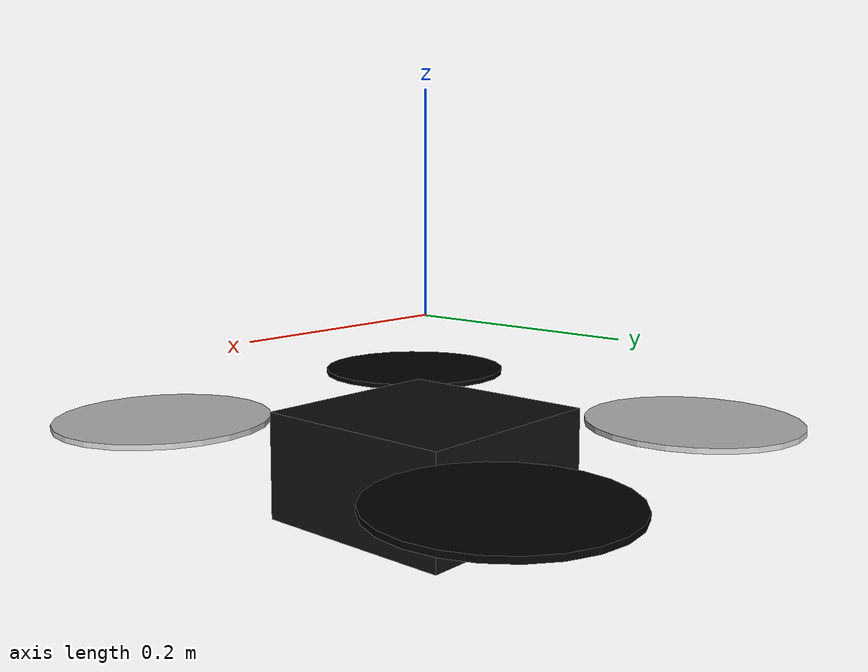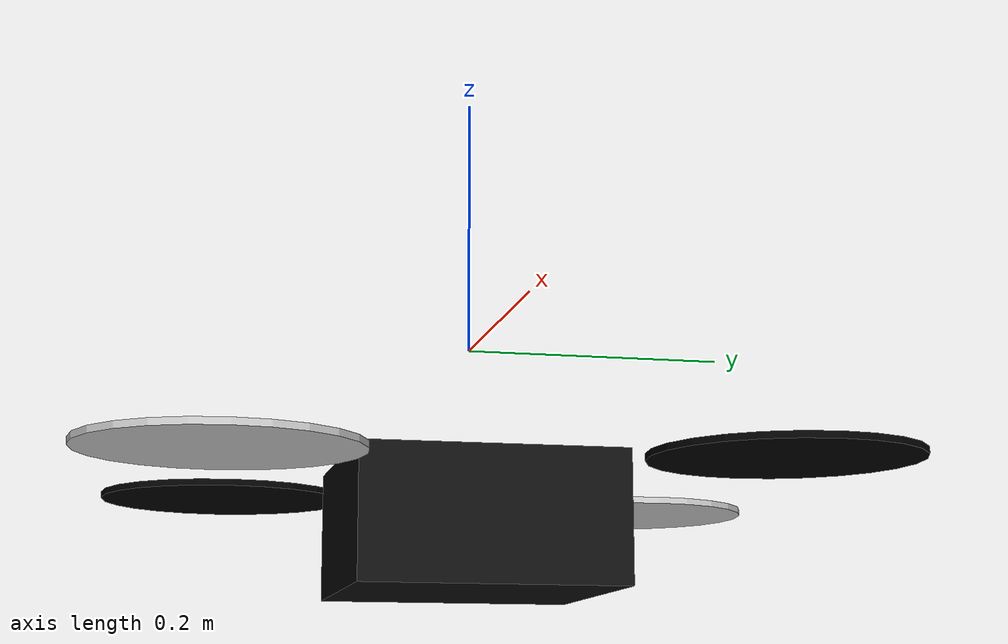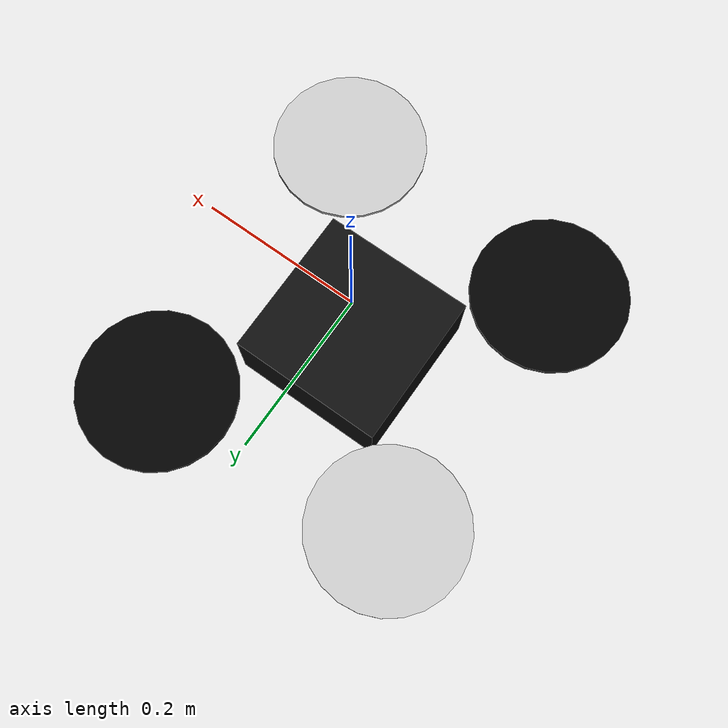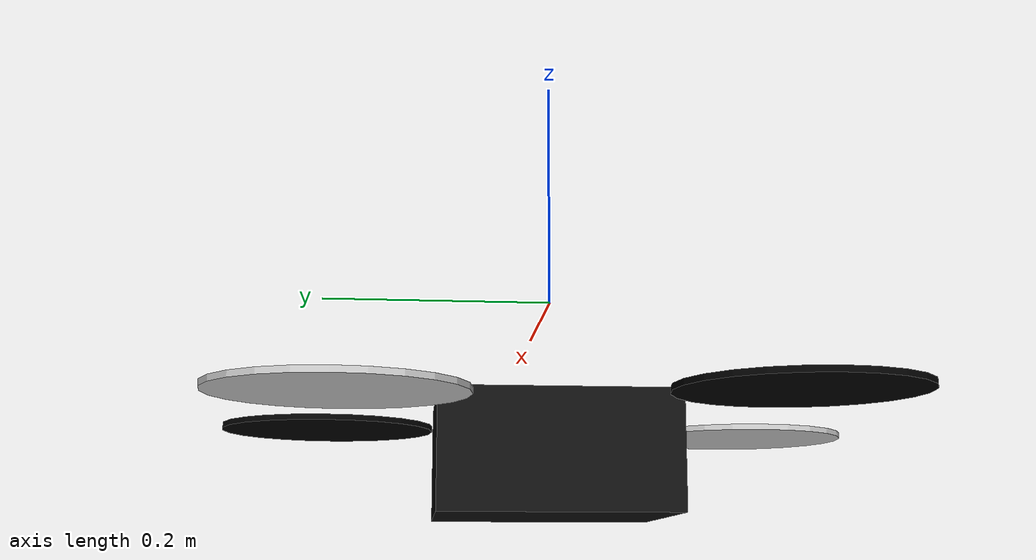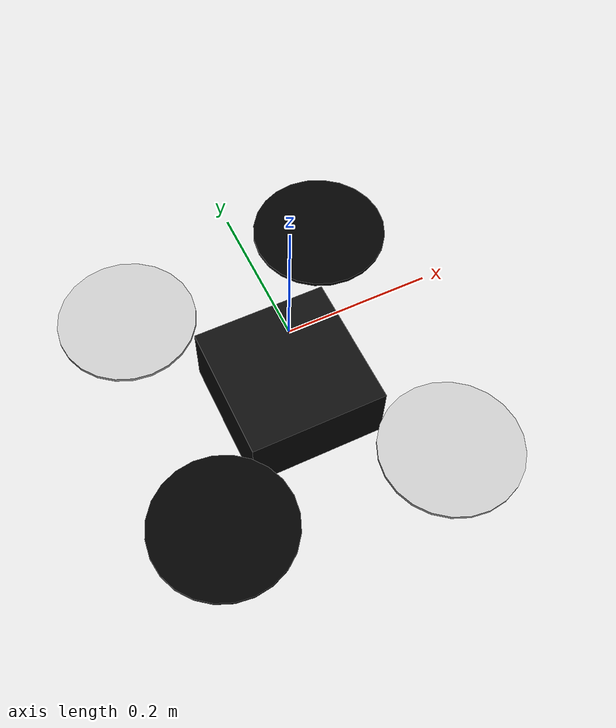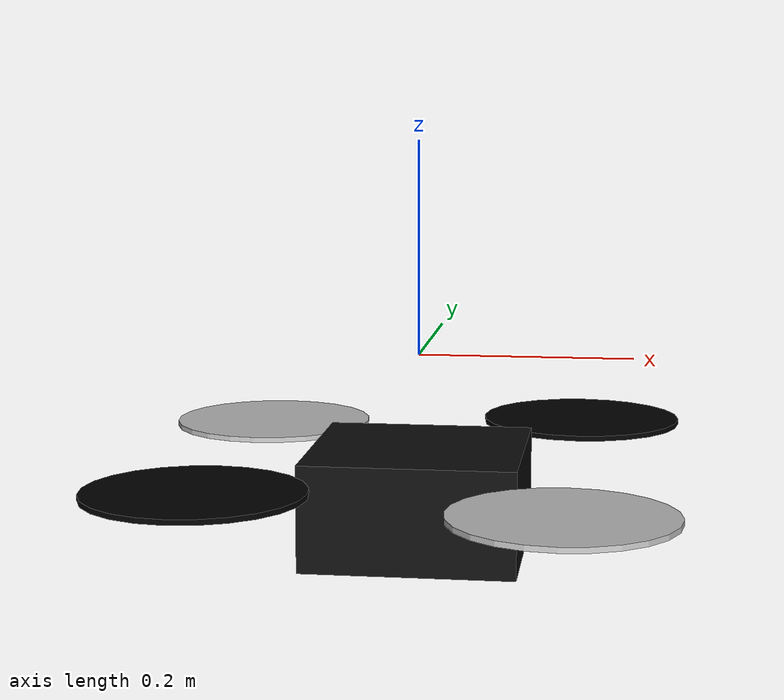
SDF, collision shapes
<?xml version="1.0" ?>
<!-- |    This document was autogenerated by xacro from model.xacro.sdf                | -->
<!-- |    EDITING THIS FILE BY HAND IS NOT RECOMMENDED                                 | -->
<sdf version="1.9">
  <model name="spiri_mu">
    <include>
      <uri>model://robots/spiri_mu_no_gimbal/models/spiri_mu_base</uri>
    </include>
    <!-- UAV plugins -->
    <plugin filename="gz-sim-joint-state-publisher-system" name="gz::sim::systems::JointStatePublisher">
    </plugin>
    <plugin filename="gz-sim-lift-drag-system" name="gz::sim::systems::LiftDrag">
      <a0>0.3</a0>
      <alpha_stall>1.4</alpha_stall>
      <cla>4.2500</cla>
      <cda>0.10</cda>
      <cma>0.0</cma>
      <cla_stall>-0.025</cla_stall>
      <cda_stall>0.0</cda_stall>
      <cma_stall>0.0</cma_stall>
      <area>0.002</area>
      <air_density>1.2041</air_density>
      <cp>0.084 0 0</cp>
      <forward>0 1 0</forward>
      <upward>0 0 1</upward>
      <link_name>spiri_mu_base::rotor_0</link_name>
    </plugin>
    <plugin filename="gz-sim-lift-drag-system" name="gz::sim::systems::LiftDrag">
      <a0>0.3</a0>
      <alpha_stall>1.4</alpha_stall>
      <cla>4.2500</cla>
      <cda>0.10</cda>
      <cma>0.0</cma>
      <cla_stall>-0.025</cla_stall>
      <cda_stall>0.0</cda_stall>
      <cma_stall>0.0</cma_stall>
      <area>0.002</area>
      <air_density>1.2041</air_density>
      <cp>-0.084 0 0</cp>
      <forward>0 -1 0</forward>
      <upward>0 0 1</upward>
      <link_name>spiri_mu_base::rotor_0</link_name>
    </plugin>
    <plugin filename="gz-sim-lift-drag-system" name="gz::sim::systems::LiftDrag">
      <a0>0.3</a0>
      <alpha_stall>1.4</alpha_stall>
      <cla>4.2500</cla>
      <cda>0.10</cda>
      <cma>0.0</cma>
      <cla_stall>-0.025</cla_stall>
      <cda_stall>0.0</cda_stall>
      <cma_stall>0.0</cma_stall>
      <area>0.002</area>
      <air_density>1.2041</air_density>
      <cp>0.084 0 0</cp>
      <forward>0 1 0</forward>
      <upward>0 0 1</upward>
      <link_name>spiri_mu_base::rotor_1</link_name>
    </plugin>
    <plugin filename="gz-sim-lift-drag-system" name="gz::sim::systems::LiftDrag">
      <a0>0.3</a0>
      <alpha_stall>1.4</alpha_stall>
      <cla>4.2500</cla>
      <cda>0.10</cda>
      <cma>0.0</cma>
      <cla_stall>-0.025</cla_stall>
      <cda_stall>0.0</cda_stall>
      <cma_stall>0.0</cma_stall>
      <area>0.002</area>
      <air_density>1.2041</air_density>
      <cp>-0.084 0 0</cp>
      <forward>0 -1 0</forward>
      <upward>0 0 1</upward>
      <link_name>spiri_mu_base::rotor_1</link_name>
    </plugin>
    <plugin filename="gz-sim-lift-drag-system" name="gz::sim::systems::LiftDrag">
      <a0>0.3</a0>
      <alpha_stall>1.4</alpha_stall>
      <cla>4.2500</cla>
      <cda>0.10</cda>
      <cma>0.0</cma>
      <cla_stall>-0.025</cla_stall>
      <cda_stall>0.0</cda_stall>
      <cma_stall>0.0</cma_stall>
      <area>0.002</area>
      <air_density>1.2041</air_density>
      <cp>0.084 0 0</cp>
      <forward>0 -1 0</forward>
      <upward>0 0 1</upward>
      <link_name>spiri_mu_base::rotor_2</link_name>
    </plugin>
    <plugin filename="gz-sim-lift-drag-system" name="gz::sim::systems::LiftDrag">
      <a0>0.3</a0>
      <alpha_stall>1.4</alpha_stall>
      <cla>4.2500</cla>
      <cda>0.10</cda>
      <cma>0.0</cma>
      <cla_stall>-0.025</cla_stall>
      <cda_stall>0.0</cda_stall>
      <cma_stall>0.0</cma_stall>
      <area>0.002</area>
      <air_density>1.2041</air_density>
      <cp>-0.084 0 0</cp>
      <forward>0 1 0</forward>
      <upward>0 0 1</upward>
      <link_name>spiri_mu_base::rotor_2</link_name>
    </plugin>
    <plugin filename="gz-sim-lift-drag-system" name="gz::sim::systems::LiftDrag">
      <a0>0.3</a0>
      <alpha_stall>1.4</alpha_stall>
      <cla>4.2500</cla>
      <cda>0.10</cda>
      <cma>0.0</cma>
      <cla_stall>-0.025</cla_stall>
      <cda_stall>0.0</cda_stall>
      <cma_stall>0.0</cma_stall>
      <area>0.002</area>
      <air_density>1.2041</air_density>
      <cp>0.084 0 0</cp>
      <forward>0 -1 0</forward>
      <upward>0 0 1</upward>
      <link_name>spiri_mu_base::rotor_3</link_name>
    </plugin>
    <plugin filename="gz-sim-lift-drag-system" name="gz::sim::systems::LiftDrag">
      <a0>0.3</a0>
      <alpha_stall>1.4</alpha_stall>
      <cla>4.2500</cla>
      <cda>0.10</cda>
      <cma>0.0</cma>
      <cla_stall>-0.025</cla_stall>
      <cda_stall>0.0</cda_stall>
      <cma_stall>0.0</cma_stall>
      <area>0.002</area>
      <air_density>1.2041</air_density>
      <cp>-0.084 0 0</cp>
      <forward>0 1 0</forward>
      <upward>0 0 1</upward>
      <link_name>spiri_mu_base::rotor_3</link_name>
    </plugin>
    <plugin filename="gz-sim-apply-joint-force-system" name="gz::sim::systems::ApplyJointForce">
      <joint_name>spiri_mu_base::rotor_0_joint</joint_name>
    </plugin>
    <plugin filename="gz-sim-apply-joint-force-system" name="gz::sim::systems::ApplyJointForce">
      <joint_name>spiri_mu_base::rotor_1_joint</joint_name>
    </plugin>
    <plugin filename="gz-sim-apply-joint-force-system" name="gz::sim::systems::ApplyJointForce">
      <joint_name>spiri_mu_base::rotor_2_joint</joint_name>
    </plugin>
    <plugin filename="gz-sim-apply-joint-force-system" name="gz::sim::systems::ApplyJointForce">
      <joint_name>spiri_mu_base::rotor_3_joint</joint_name>
    </plugin>
    <plugin filename="ArduPilotPlugin" name="ArduPilotPlugin">
      <!-- Port settings -->
      <fdm_addr>0.0.0.0</fdm_addr>
      <fdm_port_in>9012</fdm_port_in>
      <connectionTimeoutMaxCount>5</connectionTimeoutMaxCount>
      <lock_step>1</lock_step>
      <!-- Frame conventions
        Require by ArduPilot: change model and gazebo from XYZ to XY-Z coordinates
      -->
      <modelXYZToAirplaneXForwardZDown degrees="true">0 0 0 180 0 0</modelXYZToAirplaneXForwardZDown>
      <gazeboXYZToNED degrees="true">0 0 0 180 0 90</gazeboXYZToNED>
      <!-- Sensors -->
      <imuName>spiri_mu_base::imu_link::imu_sensor</imuName>
      <!--
          incoming control command [0, 1]
          so offset it by 0 to get [0, 1]
          and divide max target by 1.
          offset = 0
          multiplier = 838 max rpm / 1 = 838
        -->
      <control channel="0">
        <jointName>spiri_mu_base::rotor_0_joint</jointName>
        <useForce>1</useForce>
        <multiplier>838</multiplier>
        <offset>0</offset>
        <servo_min>1100</servo_min>
        <servo_max>1900</servo_max>
        <type>VELOCITY</type>
        <p_gain>0.20</p_gain>
        <i_gain>0</i_gain>
        <d_gain>0</d_gain>
        <i_max>0</i_max>
        <i_min>0</i_min>
        <cmd_max>2.5</cmd_max>
        <cmd_min>-2.5</cmd_min>
        <controlVelocitySlowdownSim>1</controlVelocitySlowdownSim>
      </control>
      <control channel="1">
        <jointName>spiri_mu_base::rotor_1_joint</jointName>
        <useForce>1</useForce>
        <multiplier>838</multiplier>
        <offset>0</offset>
        <servo_min>1100</servo_min>
        <servo_max>1900</servo_max>
        <type>VELOCITY</type>
        <p_gain>0.20</p_gain>
        <i_gain>0</i_gain>
        <d_gain>0</d_gain>
        <i_max>0</i_max>
        <i_min>0</i_min>
        <cmd_max>2.5</cmd_max>
        <cmd_min>-2.5</cmd_min>
        <controlVelocitySlowdownSim>1</controlVelocitySlowdownSim>
      </control>
      <control channel="2">
        <jointName>spiri_mu_base::rotor_2_joint</jointName>
        <useForce>1</useForce>
        <multiplier>-838</multiplier>
        <offset>0</offset>
        <servo_min>1100</servo_min>
        <servo_max>1900</servo_max>
        <type>VELOCITY</type>
        <p_gain>0.20</p_gain>
        <i_gain>0</i_gain>
        <d_gain>0</d_gain>
        <i_max>0</i_max>
        <i_min>0</i_min>
        <cmd_max>2.5</cmd_max>
        <cmd_min>-2.5</cmd_min>
        <controlVelocitySlowdownSim>1</controlVelocitySlowdownSim>
      </control>
      <control channel="3">
        <jointName>spiri_mu_base::rotor_3_joint</jointName>
        <useForce>1</useForce>
        <multiplier>-838</multiplier>
        <offset>0</offset>
        <servo_min>1100</servo_min>
        <servo_max>1900</servo_max>
        <type>VELOCITY</type>
        <p_gain>0.20</p_gain>
        <i_gain>0</i_gain>
        <d_gain>0</d_gain>
        <i_max>0</i_max>
        <i_min>0</i_min>
        <cmd_max>2.5</cmd_max>
        <cmd_min>-2.5</cmd_min>
        <controlVelocitySlowdownSim>1</controlVelocitySlowdownSim>
      </control>
    </plugin>
  </model>
</sdf>

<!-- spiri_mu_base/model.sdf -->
<sdf version='1.9'>
  <model name='spiri_mu_base'>
    <pose>0 0 0 0 0 0</pose>
    <link name='base_link'>
      <velocity_decay>
        <linear>0.0</linear>
        <angular>0.0</angular>
      </velocity_decay>
      <inertial>
        <pose>0 0 0 0 0 0</pose>
        <mass>1.5</mass>
        <inertia>
          <ixx>0.008</ixx>
          <ixy>0</ixy>
          <ixz>0</ixz>
          <iyy>0.015</iyy>
          <iyz>0</iyz>
          <izz>0.017</izz>
        </inertia>
      </inertial>
      <collision name='base_collision'>
        <pose degrees='true'>0 0 -0.1375 0 0 180</pose>
        <geometry>
          <box>
            <size>0.2 0.2 0.1</size>
          </box>
        </geometry>
        <surface>
          <contact>
            <ode>
              <max_vel>100.0</max_vel>
              <min_depth>0.001</min_depth>
            </ode>
          </contact>
          <friction>
            <ode>
              <mu>100000.0</mu>
              <mu2>100000.0</mu2>
            </ode>
          </friction>
        </surface>
      </collision>
      <visual name='base_visual'>
        <pose degrees='true'>0 0 -0.1375 0 0 90</pose>
        <geometry>
          <mesh>
            <uri>model://robots/spiri_mu/models/spiri_mu_base/meshes/mu2_frame.fbx</uri>
            <scale> 0.01 0.01 0.01</scale>
          </mesh>
        </geometry>
      </visual>

      <visual name='front_left_leg_visual'>
        <pose degrees='true'>0.1455 0.20 -0.1375 0 0 285</pose>
        <geometry>
          <mesh>
            <uri>model://robots/spiri_mu/models/spiri_mu_base/meshes/mu2_leg.fbx</uri>
            <scale> 0.01 0.01 0.01</scale>
          </mesh>
        </geometry>
         <material>
          <ambient>0.05 0.05 0.05</ambient>
          <diffuse>0.05 0.05 0.05</diffuse>
          <specular>0.01 0.01 0.01 1.0</specular>
          <pbr>
            <metal>
              <metalness>0.5</metalness>
              <roughness>0.5</roughness>
            </metal>
          </pbr>
        </material>
      </visual>

      <visual name='front_left_motor_visual'>
        <pose degrees='true'>0.1455 0.20 -0.13 0 0 30</pose>
        <geometry>
          <mesh>
            <uri>model://robots/spiri_mu/models/spiri_mu_base/meshes/mu2_motor.fbx</uri>
            <scale> 0.01 0.01 0.01</scale>
          </mesh>
        </geometry>
         <material>
          <ambient>0.05 0.05 0.05</ambient>
          <diffuse>0.05 0.05 0.05</diffuse>
          <specular>0.01 0.01 0.01 1.0</specular>
          <pbr>
            <metal>
              <metalness>0.5</metalness>
              <roughness>0.5</roughness>
            </metal>
          </pbr>
        </material>
      </visual>

      <visual name='front_right_leg_visual'>
        <pose degrees='true'>0.1455 -0.20 -0.1375 0 0 165</pose>
        <geometry>
          <mesh>
            <uri>model://robots/spiri_mu/models/spiri_mu_base/meshes/mu2_leg.fbx</uri>
            <scale> 0.01 0.01 0.01</scale>
          </mesh>
        </geometry>
         <material>
          <ambient>0.05 0.05 0.05</ambient>
          <diffuse>0.05 0.05 0.05</diffuse>
          <specular>0.01 0.01 0.01 1.0</specular>
          <pbr>
            <metal>
              <metalness>0.5</metalness>
              <roughness>0.5</roughness>
            </metal>
          </pbr>
        </material>
      </visual>

      <visual name='front_right_motor_visual'>
        <pose degrees='true'>0.1455 -0.20 -0.13 0 0 90</pose>
        <geometry>
          <mesh>
            <uri>model://robots/spiri_mu/models/spiri_mu_base/meshes/mu2_motor.fbx</uri>
            <scale> 0.01 0.01 0.01</scale>
          </mesh>
        </geometry>
        <material>
          <ambient>0.05 0.05 0.05</ambient>
          <diffuse>0.05 0.05 0.05</diffuse>
          <specular>0.01 0.01 0.01 1.0</specular>
          <pbr>
            <metal>
              <metalness>0.5</metalness>
              <roughness>0.5</roughness>
            </metal>
          </pbr>
        </material>
      </visual>

      <visual name='rear_left_leg_visual'>
        <pose degrees='true'>-0.175 0.175 -0.1375 0 0 0</pose>
        <geometry>
          <mesh>
            <uri>model://robots/spiri_mu/models/spiri_mu_base/meshes/mu2_leg.fbx</uri>
            <scale> 0.01 0.01 0.01</scale>
          </mesh>
        </geometry>
         <material>
          <ambient>0.05 0.05 0.05</ambient>
          <diffuse>0.05 0.05 0.05</diffuse>
          <specular>0.01 0.01 0.01 1.0</specular>
          <pbr>
            <metal>
              <metalness>0.5</metalness>
              <roughness>0.5</roughness>
            </metal>
          </pbr>
        </material>
      </visual>

      <visual name='rear_left_motor_visual'>
        <pose degrees='true'>-0.175 0.175 -0.13 0 0 0</pose>
        <geometry>
          <mesh>
            <uri>model://robots/spiri_mu/models/spiri_mu_base/meshes/mu2_motor.fbx</uri>
            <scale> 0.01 0.01 0.01</scale>
          </mesh>
        </geometry>
        <material>
          <ambient>0.05 0.05 0.05</ambient>
          <diffuse>0.05 0.05 0.05</diffuse>
          <specular>0.01 0.01 0.01 1.0</specular>
          <pbr>
            <metal>
              <metalness>0.5</metalness>
              <roughness>0.5</roughness>
            </metal>
          </pbr>
        </material>
      </visual>

      <visual name='rear_right_leg_visual'>
        <pose degrees='true'>-0.175 -0.175 -0.1375 0 0 90</pose>
        <geometry>
          <mesh>
            <uri>model://robots/spiri_mu/models/spiri_mu_base/meshes/mu2_leg.fbx</uri>
            <scale> 0.01 0.01 0.01</scale>
          </mesh>
        </geometry>
         <material>
          <ambient>0.05 0.05 0.05</ambient>
          <diffuse>0.05 0.05 0.05</diffuse>
          <specular>0.01 0.01 0.01 1.0</specular>
          <pbr>
            <metal>
              <metalness>0.5</metalness>
              <roughness>0.5</roughness>
            </metal>
          </pbr>
        </material>
      </visual>
      <visual name='rear_right_motor_visual'>
        <pose degrees='true'>-0.175 -0.175 -0.13 0 0 0</pose>
        <geometry>
          <mesh>
            <uri>model://robots/spiri_mu/models/spiri_mu_base/meshes/mu2_motor.fbx</uri>
            <scale> 0.01 0.01 0.01</scale>
          </mesh>
        </geometry>
        <material>
          <ambient>0.05 0.05 0.05</ambient>
          <diffuse>0.05 0.05 0.05</diffuse>
          <specular>0.01 0.01 0.01 1.0</specular>
          <pbr>
            <metal>
              <metalness>0.5</metalness>
              <roughness>0.5</roughness>
            </metal>
          </pbr>
        </material>
      </visual>
    </link>
    <link name='imu_link'>
      <inertial>
        <pose>0 0 0 0 0 0</pose>
        <mass>0.15</mass>
        <inertia>
          <ixx>0.00001</ixx>
          <ixy>0</ixy>
          <ixz>0</ixz>
          <iyy>0.00002</iyy>
          <iyz>0</iyz>
          <izz>0.00002</izz>
        </inertia>
      </inertial>
      <sensor name="imu_sensor" type="imu">
        <pose degrees="true">0 0 0 180 0 0</pose>
        <always_on>1</always_on>
        <update_rate>1000.0</update_rate>
      </sensor>
    </link>
    <joint name='imu_joint' type='revolute'>
      <child>imu_link</child>
      <parent>base_link</parent>
      <axis>
        <xyz>0 0 1</xyz>
        <limit>
          <lower>0</lower>
          <upper>0</upper>
          <effort>0</effort>
          <velocity>0</velocity>
        </limit>
        <dynamics>
          <damping>1.0</damping>
        </dynamics>
      </axis>
    </joint>
    <link name='rotor_0'>
      <pose degrees='true'>0.1455 -0.20 -0.1025 0 0 0</pose>
      <inertial>
        <pose>0 0 0 0 0 0</pose>
        <mass>0.025</mass>
        <inertia>
          <ixx>9.75e-06</ixx>
          <ixy>0</ixy>
          <ixz>0</ixz>
          <iyy>0.000166704</iyy>
          <iyz>0</iyz>
          <izz>0.000167604</izz>
        </inertia>
      </inertial>
      <collision name='rotor_0_collision'>
        <pose>0 0 0 0 0 0</pose>
        <geometry>
          <cylinder>
            <length>0.005</length>
            <radius>0.1</radius>
          </cylinder>
        </geometry>
        <surface>
          <contact>
            <ode/>
          </contact>
          <friction>
            <ode/>
          </friction>
        </surface>
      </collision>
      <visual name='rotor_0_visual'>
        <pose>0 0 0 0 0 0</pose>
        <geometry>
          <mesh>
            <uri>model://robots/spiri_mu/models/spiri_mu_base/meshes/mu2_prop.fbx</uri>
            <scale> 0.01 0.01 0.01</scale>
          </mesh>
        </geometry>
        <material>
          <ambient>0.753 0.753 0.753</ambient>
          <diffuse>0.753 0.753 0.753</diffuse>
          <specular>1 1 1 1</specular>
          <pbr>
            <metal>
              <metalness>1.0</metalness>
              <roughness>0.5</roughness>
            </metal>
          </pbr>
        </material>
      </visual>
      <gravity>1</gravity>
      <velocity_decay/>
      <self_collide>0</self_collide>
    </link>
    <joint name='rotor_0_joint' type='revolute'>
      <child>rotor_0</child>
      <parent>base_link</parent>
      <axis>
        <xyz>0 0 1</xyz>
        <limit>
          <lower>-1e+16</lower>
          <upper>1e+16</upper>
        </limit>
        <dynamics>
          <damping>0.004</damping>
        </dynamics>
      </axis>
      <physics>
        <ode>
          <implicit_spring_damper>1</implicit_spring_damper>
        </ode>
      </physics>
    </joint>
    <link name='rotor_1'>
        <pose degrees='true'>-0.175 0.175 -0.1025 0 0 0</pose>
      <inertial>
        <pose>0 0 0 0 0 0</pose>
        <mass>0.025</mass>
        <inertia>
          <ixx>9.75e-06</ixx>
          <ixy>0</ixy>
          <ixz>0</ixz>
          <iyy>0.000166704</iyy>
          <iyz>0</iyz>
          <izz>0.000167604</izz>
        </inertia>
      </inertial>
      <collision name='rotor_1_collision'>
        <pose>0 0 0 0 0 0</pose>
        <geometry>
          <cylinder>
            <length>0.005</length>
            <radius>0.1</radius>
          </cylinder>
        </geometry>
        <surface>
          <contact>
            <ode/>
          </contact>
          <friction>
            <ode/>
          </friction>
        </surface>
      </collision>
      <visual name='rotor_1_visual'>
        <geometry>
          <mesh>
            <uri>model://robots/spiri_mu/models/spiri_mu_base/meshes/mu2_prop.fbx</uri>
            <scale> 0.01 0.01 0.01</scale>
          </mesh>
        </geometry>
        <material>
          <ambient>0.753 0.753 0.753</ambient>
          <diffuse>0.753 0.753 0.753</diffuse>
          <specular>1 1 1 1</specular>
          <pbr>
            <metal>
              <metalness>1.0</metalness>
              <roughness>0.5</roughness>
            </metal>
          </pbr>
        </material>
      </visual>
      <gravity>1</gravity>
      <velocity_decay/>
      <self_collide>0</self_collide>
    </link>
    <joint name='rotor_1_joint' type='revolute'>
      <child>rotor_1</child>
      <parent>base_link</parent>
      <axis>
        <xyz>0 0 1</xyz>
        <limit>
          <lower>-1e+16</lower>
          <upper>1e+16</upper>
        </limit>
        <dynamics>
          <damping>0.004</damping>
        </dynamics>
      </axis>
      <physics>
        <ode>
          <implicit_spring_damper>1</implicit_spring_damper>
        </ode>
      </physics>
    </joint>
    <link name='rotor_2'>
        <pose degrees='true'>0.1455 0.20 -0.0975 0 0 0</pose>
      <inertial>
        <pose>0 0 0 0 0 0</pose>
        <mass>0.025</mass>
        <inertia>
          <ixx>9.75e-06</ixx>
          <ixy>0</ixy>
          <ixz>0</ixz>
          <iyy>0.000166704</iyy>
          <iyz>0</iyz>
          <izz>0.000167604</izz>
        </inertia>
      </inertial>
      <collision name='rotor_2_collision'>
        <pose>0 0 0 0 0 0</pose>
        <geometry>
          <cylinder>
            <length>0.005</length>
            <radius>0.1</radius>
          </cylinder>
        </geometry>
        <surface>
          <contact>
            <ode/>
          </contact>
          <friction>
            <ode/>
          </friction>
        </surface>
      </collision>
      <visual name='rotor_2_visual'>
        <pose>0 0 0 0 0 0</pose>
        <geometry>
          <mesh>
            <uri>model://robots/spiri_mu/models/spiri_mu_base/meshes/mu2_prop.fbx</uri>
            <scale> 0.01 0.01 0.01</scale>
          </mesh>
        </geometry>
        <material>
          <ambient>0 0 0</ambient>
          <diffuse>0 0 0</diffuse>
          <specular>1 1 1 1</specular>
          <pbr>
            <metal>
              <metalness>1.0</metalness>
              <roughness>0.5</roughness>
            </metal>
          </pbr>
        </material>
      </visual>
      <gravity>1</gravity>
      <velocity_decay/>
      <self_collide>0</self_collide>
    </link>
    <joint name='rotor_2_joint' type='revolute'>
      <child>rotor_2</child>
      <parent>base_link</parent>
      <axis>
        <xyz>0 0 1</xyz>
        <limit>
          <lower>-1e+16</lower>
          <upper>1e+16</upper>
        </limit>
        <dynamics>
          <damping>0.004</damping>
        </dynamics>
      </axis>
      <physics>
        <ode>
          <implicit_spring_damper>1</implicit_spring_damper>
        </ode>
      </physics>
    </joint>
    <link name='rotor_3'>
        <pose degrees='true'>-0.175 -0.175 -0.0975 0 0 0</pose>
      <inertial>
        <pose>0 0 0 0 0 0</pose>
        <mass>0.025</mass>
        <inertia>
          <ixx>9.75e-06</ixx>
          <ixy>0</ixy>
          <ixz>0</ixz>
          <iyy>0.000166704</iyy>
          <iyz>0</iyz>
          <izz>0.000167604</izz>
        </inertia>
      </inertial>
      <collision name='rotor_3_collision'>
        <pose>0 0 0 0 0 0</pose>
        <geometry>
          <cylinder>
            <length>0.005</length>
            <radius>0.1</radius>
          </cylinder>
        </geometry>
        <surface>
          <contact>
            <ode/>
          </contact>
          <friction>
            <ode/>
          </friction>
        </surface>
      </collision>
      <visual name='rotor_3_visual'>
        <pose>0 0 0 0 0 0</pose>
        <geometry>
          <mesh>
            <uri>model://robots/spiri_mu/models/spiri_mu_base/meshes/mu2_prop.fbx</uri>
            <scale> 0.01 0.01 0.01</scale>
          </mesh>
        </geometry>
        <material>
          <ambient>0 0 0</ambient>
          <diffuse>0 0 0</diffuse>
          <specular>1 1 1 1</specular>
          <pbr>
            <metal>
              <metalness>1.0</metalness>
              <roughness>0.5</roughness>
            </metal>
          </pbr>
        </material>
      </visual>
      <gravity>1</gravity>
      <velocity_decay/>
      <self_collide>0</self_collide>
    </link>
    <joint name='rotor_3_joint' type='revolute'>
      <child>rotor_3</child>
      <parent>base_link</parent>
      <axis>
        <xyz>0 0 1</xyz>
        <limit>
          <lower>-1e+16</lower>
          <upper>1e+16</upper>
        </limit>
        <dynamics>
          <damping>0.004</damping>
        </dynamics>
      </axis>
      <physics>
        <ode>
          <implicit_spring_damper>1</implicit_spring_damper>
        </ode>
      </physics>
    </joint>
  </model>
</sdf>
